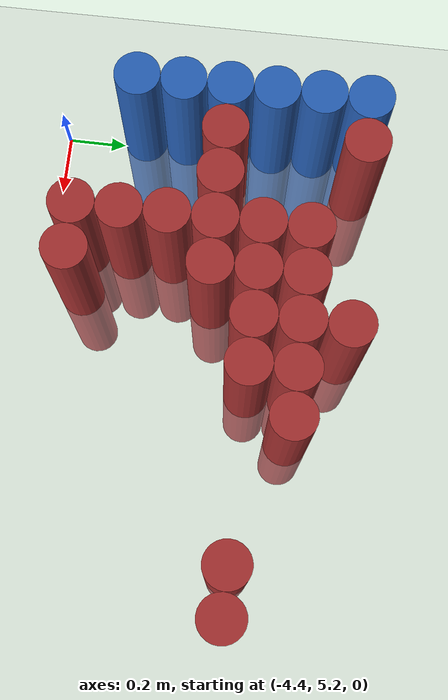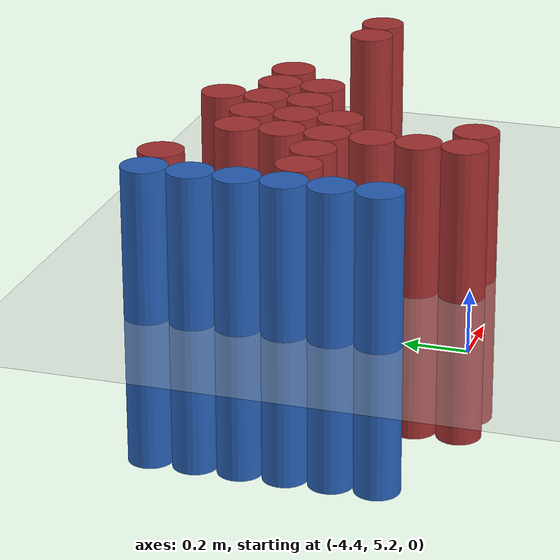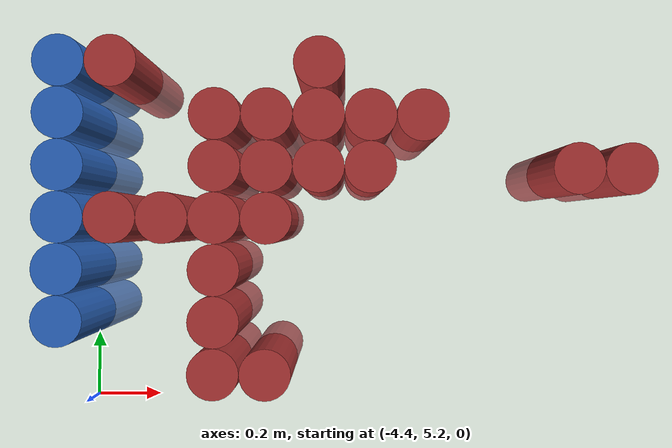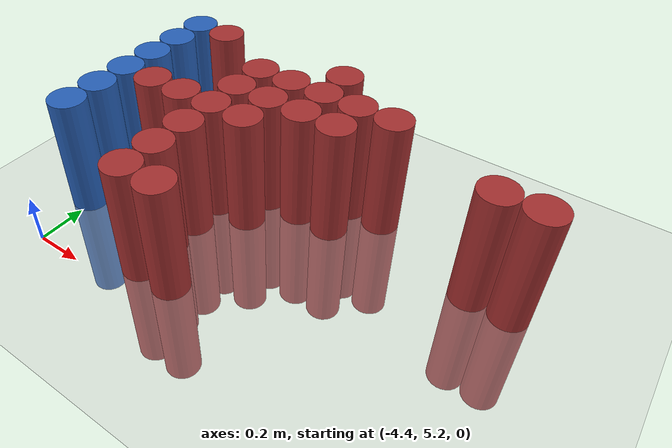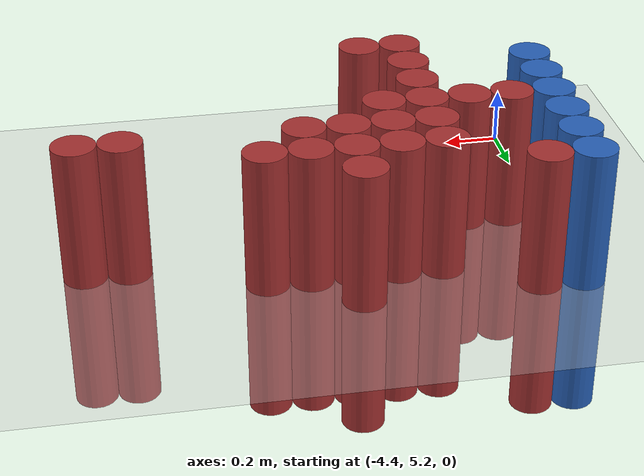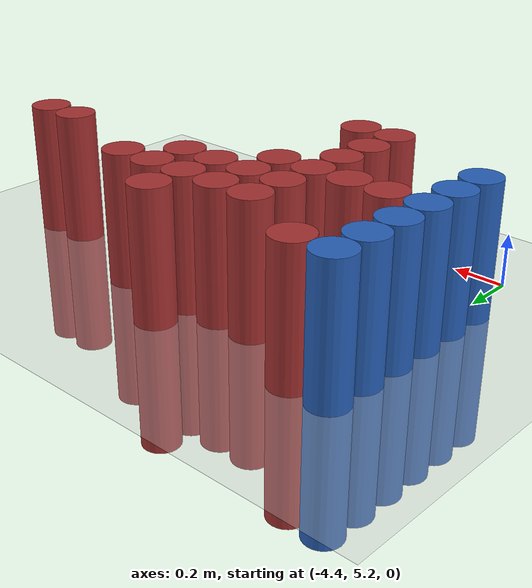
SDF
<sdf version="1.6">
 <world name="default">
  <model name="ground_plane">
   <static>1</static>
   <link name="link">
    <collision name="collision">
     <geometry><plane><normal>0 0 1</normal><size>100 100</size></plane></geometry>
     <surface><friction><ode><mu>100</mu><mu2>50</mu2></ode></friction></surface>
    </collision>
    <visual name="visual">
     <cast_shadows>0</cast_shadows>
     <geometry><plane><normal>0 0 1</normal><size>100 100</size></plane></geometry>
     <material>
      <script><uri>file://media/materials/scripts/gazebo.material</uri><name>Gazebo/Grey</name></script>
     </material>
    </visual>
   </link>
  </model>
  <model name="unit_cylinder_98">
   <static>1</static>
   <pose>-4.425000 5.475000 0.000000 0.000000 0.000000 0.000000</pose>
   <link name="link">
    <inertial>
     <mass>1</mass>
     <inertia><ixx>0.145833</ixx><ixy>0</ixy><ixz>0</ixz><iyy>0.145833</iyy><iyz>0</iyz><izz>0.125</izz></inertia>
    </inertial>
    <collision name="collision">
     <geometry><cylinder><radius>0.075000</radius><length>1</length></cylinder></geometry>
    </collision>
    <visual name="visual">
     <geometry><cylinder><radius>0.075000</radius><length>1</length></cylinder></geometry>
     <material>
      <ambient>0.152000 0.379000 0.720000 1</ambient>
      <diffuse>0.152000 0.379000 0.720000 1</diffuse>
     </material>
     <material>
      <script><name>Gazebo/Grey</name><uri>file://media/materials/scripts/gazebo.material</uri></script>
     </material>
    </visual>
   </link>
  </model>
  <model name="unit_cylinder_99">
   <static>1</static>
   <pose>-4.425000 5.625000 0.000000 0.000000 0.000000 0.000000</pose>
   <link name="link">
    <inertial>
     <mass>1</mass>
     <inertia><ixx>0.145833</ixx><ixy>0</ixy><ixz>0</ixz><iyy>0.145833</iyy><iyz>0</iyz><izz>0.125</izz></inertia>
    </inertial>
    <collision name="collision">
     <geometry><cylinder><radius>0.075000</radius><length>1</length></cylinder></geometry>
    </collision>
    <visual name="visual">
     <geometry><cylinder><radius>0.075000</radius><length>1</length></cylinder></geometry>
     <material>
      <ambient>0.152000 0.379000 0.720000 1</ambient>
      <diffuse>0.152000 0.379000 0.720000 1</diffuse>
     </material>
     <material>
      <script><name>Gazebo/Grey</name><uri>file://media/materials/scripts/gazebo.material</uri></script>
     </material>
    </visual>
   </link>
  </model>
  <model name="unit_cylinder_100">
   <static>1</static>
   <pose>-4.425000 5.775000 0.000000 0.000000 0.000000 0.000000</pose>
   <link name="link">
    <inertial>
     <mass>1</mass>
     <inertia><ixx>0.145833</ixx><ixy>0</ixy><ixz>0</ixz><iyy>0.145833</iyy><iyz>0</iyz><izz>0.125</izz></inertia>
    </inertial>
    <collision name="collision">
     <geometry><cylinder><radius>0.075000</radius><length>1</length></cylinder></geometry>
    </collision>
    <visual name="visual">
     <geometry><cylinder><radius>0.075000</radius><length>1</length></cylinder></geometry>
     <material>
      <ambient>0.152000 0.379000 0.720000 1</ambient>
      <diffuse>0.152000 0.379000 0.720000 1</diffuse>
     </material>
     <material>
      <script><name>Gazebo/Grey</name><uri>file://media/materials/scripts/gazebo.material</uri></script>
     </material>
    </visual>
   </link>
  </model>
  <model name="unit_cylinder_101">
   <static>1</static>
   <pose>-4.425000 5.925000 0.000000 0.000000 0.000000 0.000000</pose>
   <link name="link">
    <inertial>
     <mass>1</mass>
     <inertia><ixx>0.145833</ixx><ixy>0</ixy><ixz>0</ixz><iyy>0.145833</iyy><iyz>0</iyz><izz>0.125</izz></inertia>
    </inertial>
    <collision name="collision">
     <geometry><cylinder><radius>0.075000</radius><length>1</length></cylinder></geometry>
    </collision>
    <visual name="visual">
     <geometry><cylinder><radius>0.075000</radius><length>1</length></cylinder></geometry>
     <material>
      <ambient>0.152000 0.379000 0.720000 1</ambient>
      <diffuse>0.152000 0.379000 0.720000 1</diffuse>
     </material>
     <material>
      <script><name>Gazebo/Grey</name><uri>file://media/materials/scripts/gazebo.material</uri></script>
     </material>
    </visual>
   </link>
  </model>
  <model name="unit_cylinder_102">
   <static>1</static>
   <pose>-4.425000 6.075000 0.000000 0.000000 0.000000 0.000000</pose>
   <link name="link">
    <inertial>
     <mass>1</mass>
     <inertia><ixx>0.145833</ixx><ixy>0</ixy><ixz>0</ixz><iyy>0.145833</iyy><iyz>0</iyz><izz>0.125</izz></inertia>
    </inertial>
    <collision name="collision">
     <geometry><cylinder><radius>0.075000</radius><length>1</length></cylinder></geometry>
    </collision>
    <visual name="visual">
     <geometry><cylinder><radius>0.075000</radius><length>1</length></cylinder></geometry>
     <material>
      <ambient>0.152000 0.379000 0.720000 1</ambient>
      <diffuse>0.152000 0.379000 0.720000 1</diffuse>
     </material>
     <material>
      <script><name>Gazebo/Grey</name><uri>file://media/materials/scripts/gazebo.material</uri></script>
     </material>
    </visual>
   </link>
  </model>
  <model name="unit_cylinder_103">
   <static>1</static>
   <pose>-4.425000 6.225000 0.000000 0.000000 0.000000 0.000000</pose>
   <link name="link">
    <inertial>
     <mass>1</mass>
     <inertia><ixx>0.145833</ixx><ixy>0</ixy><ixz>0</ixz><iyy>0.145833</iyy><iyz>0</iyz><izz>0.125</izz></inertia>
    </inertial>
    <collision name="collision">
     <geometry><cylinder><radius>0.075000</radius><length>1</length></cylinder></geometry>
    </collision>
    <visual name="visual">
     <geometry><cylinder><radius>0.075000</radius><length>1</length></cylinder></geometry>
     <material>
      <ambient>0.152000 0.379000 0.720000 1</ambient>
      <diffuse>0.152000 0.379000 0.720000 1</diffuse>
     </material>
     <material>
      <script><name>Gazebo/Grey</name><uri>file://media/materials/scripts/gazebo.material</uri></script>
     </material>
    </visual>
   </link>
  </model>
  <model name="unit_cylinder_127">
   <static>1</static>
   <pose>-4.275000 5.775000 0.000000 0.000000 0.000000 0.000000</pose>
   <link name="link">
    <inertial>
     <mass>1</mass>
     <inertia><ixx>0.145833</ixx><ixy>0</ixy><ixz>0</ixz><iyy>0.145833</iyy><iyz>0</iyz><izz>0.125</izz></inertia>
    </inertial>
    <collision name="collision">
     <geometry><cylinder><radius>0.075000</radius><length>1</length></cylinder></geometry>
    </collision>
    <visual name="visual">
     <geometry><cylinder><radius>0.075000</radius><length>1</length></cylinder></geometry>
     <material>
      <ambient>0.648000 0.192000 0.192000 1</ambient>
      <diffuse>0.648000 0.192000 0.192000 1</diffuse>
     </material>
     <material>
      <script><name>Gazebo/Grey</name><uri>file://media/materials/scripts/gazebo.material</uri></script>
     </material>
    </visual>
   </link>
  </model>
  <model name="unit_cylinder_128">
   <static>1</static>
   <pose>-4.275000 6.225000 0.000000 0.000000 0.000000 0.000000</pose>
   <link name="link">
    <inertial>
     <mass>1</mass>
     <inertia><ixx>0.145833</ixx><ixy>0</ixy><ixz>0</ixz><iyy>0.145833</iyy><iyz>0</iyz><izz>0.125</izz></inertia>
    </inertial>
    <collision name="collision">
     <geometry><cylinder><radius>0.075000</radius><length>1</length></cylinder></geometry>
    </collision>
    <visual name="visual">
     <geometry><cylinder><radius>0.075000</radius><length>1</length></cylinder></geometry>
     <material>
      <ambient>0.648000 0.192000 0.192000 1</ambient>
      <diffuse>0.648000 0.192000 0.192000 1</diffuse>
     </material>
     <material>
      <script><name>Gazebo/Grey</name><uri>file://media/materials/scripts/gazebo.material</uri></script>
     </material>
    </visual>
   </link>
  </model>
  <model name="unit_cylinder_140">
   <static>1</static>
   <pose>-4.125000 5.775000 0.000000 0.000000 0.000000 0.000000</pose>
   <link name="link">
    <inertial>
     <mass>1</mass>
     <inertia><ixx>0.145833</ixx><ixy>0</ixy><ixz>0</ixz><iyy>0.145833</iyy><iyz>0</iyz><izz>0.125</izz></inertia>
    </inertial>
    <collision name="collision">
     <geometry><cylinder><radius>0.075000</radius><length>1</length></cylinder></geometry>
    </collision>
    <visual name="visual">
     <geometry><cylinder><radius>0.075000</radius><length>1</length></cylinder></geometry>
     <material>
      <ambient>0.648000 0.192000 0.192000 1</ambient>
      <diffuse>0.648000 0.192000 0.192000 1</diffuse>
     </material>
     <material>
      <script><name>Gazebo/Grey</name><uri>file://media/materials/scripts/gazebo.material</uri></script>
     </material>
    </visual>
   </link>
  </model>
  <model name="unit_cylinder_150">
   <static>1</static>
   <pose>-3.975000 5.325000 0.000000 0.000000 0.000000 0.000000</pose>
   <link name="link">
    <inertial>
     <mass>1</mass>
     <inertia><ixx>0.145833</ixx><ixy>0</ixy><ixz>0</ixz><iyy>0.145833</iyy><iyz>0</iyz><izz>0.125</izz></inertia>
    </inertial>
    <collision name="collision">
     <geometry><cylinder><radius>0.075000</radius><length>1</length></cylinder></geometry>
    </collision>
    <visual name="visual">
     <geometry><cylinder><radius>0.075000</radius><length>1</length></cylinder></geometry>
     <material>
      <ambient>0.648000 0.192000 0.192000 1</ambient>
      <diffuse>0.648000 0.192000 0.192000 1</diffuse>
     </material>
     <material>
      <script><name>Gazebo/Grey</name><uri>file://media/materials/scripts/gazebo.material</uri></script>
     </material>
    </visual>
   </link>
  </model>
  <model name="unit_cylinder_151">
   <static>1</static>
   <pose>-3.975000 5.475000 0.000000 0.000000 0.000000 0.000000</pose>
   <link name="link">
    <inertial>
     <mass>1</mass>
     <inertia><ixx>0.145833</ixx><ixy>0</ixy><ixz>0</ixz><iyy>0.145833</iyy><iyz>0</iyz><izz>0.125</izz></inertia>
    </inertial>
    <collision name="collision">
     <geometry><cylinder><radius>0.075000</radius><length>1</length></cylinder></geometry>
    </collision>
    <visual name="visual">
     <geometry><cylinder><radius>0.075000</radius><length>1</length></cylinder></geometry>
     <material>
      <ambient>0.648000 0.192000 0.192000 1</ambient>
      <diffuse>0.648000 0.192000 0.192000 1</diffuse>
     </material>
     <material>
      <script><name>Gazebo/Grey</name><uri>file://media/materials/scripts/gazebo.material</uri></script>
     </material>
    </visual>
   </link>
  </model>
  <model name="unit_cylinder_152">
   <static>1</static>
   <pose>-3.975000 5.625000 0.000000 0.000000 0.000000 0.000000</pose>
   <link name="link">
    <inertial>
     <mass>1</mass>
     <inertia><ixx>0.145833</ixx><ixy>0</ixy><ixz>0</ixz><iyy>0.145833</iyy><iyz>0</iyz><izz>0.125</izz></inertia>
    </inertial>
    <collision name="collision">
     <geometry><cylinder><radius>0.075000</radius><length>1</length></cylinder></geometry>
    </collision>
    <visual name="visual">
     <geometry><cylinder><radius>0.075000</radius><length>1</length></cylinder></geometry>
     <material>
      <ambient>0.648000 0.192000 0.192000 1</ambient>
      <diffuse>0.648000 0.192000 0.192000 1</diffuse>
     </material>
     <material>
      <script><name>Gazebo/Grey</name><uri>file://media/materials/scripts/gazebo.material</uri></script>
     </material>
    </visual>
   </link>
  </model>
  <model name="unit_cylinder_153">
   <static>1</static>
   <pose>-3.975000 5.775000 0.000000 0.000000 0.000000 0.000000</pose>
   <link name="link">
    <inertial>
     <mass>1</mass>
     <inertia><ixx>0.145833</ixx><ixy>0</ixy><ixz>0</ixz><iyy>0.145833</iyy><iyz>0</iyz><izz>0.125</izz></inertia>
    </inertial>
    <collision name="collision">
     <geometry><cylinder><radius>0.075000</radius><length>1</length></cylinder></geometry>
    </collision>
    <visual name="visual">
     <geometry><cylinder><radius>0.075000</radius><length>1</length></cylinder></geometry>
     <material>
      <ambient>0.648000 0.192000 0.192000 1</ambient>
      <diffuse>0.648000 0.192000 0.192000 1</diffuse>
     </material>
     <material>
      <script><name>Gazebo/Grey</name><uri>file://media/materials/scripts/gazebo.material</uri></script>
     </material>
    </visual>
   </link>
  </model>
  <model name="unit_cylinder_154">
   <static>1</static>
   <pose>-3.975000 5.925000 0.000000 0.000000 0.000000 0.000000</pose>
   <link name="link">
    <inertial>
     <mass>1</mass>
     <inertia><ixx>0.145833</ixx><ixy>0</ixy><ixz>0</ixz><iyy>0.145833</iyy><iyz>0</iyz><izz>0.125</izz></inertia>
    </inertial>
    <collision name="collision">
     <geometry><cylinder><radius>0.075000</radius><length>1</length></cylinder></geometry>
    </collision>
    <visual name="visual">
     <geometry><cylinder><radius>0.075000</radius><length>1</length></cylinder></geometry>
     <material>
      <ambient>0.648000 0.192000 0.192000 1</ambient>
      <diffuse>0.648000 0.192000 0.192000 1</diffuse>
     </material>
     <material>
      <script><name>Gazebo/Grey</name><uri>file://media/materials/scripts/gazebo.material</uri></script>
     </material>
    </visual>
   </link>
  </model>
  <model name="unit_cylinder_155">
   <static>1</static>
   <pose>-3.975000 6.075000 0.000000 0.000000 0.000000 0.000000</pose>
   <link name="link">
    <inertial>
     <mass>1</mass>
     <inertia><ixx>0.145833</ixx><ixy>0</ixy><ixz>0</ixz><iyy>0.145833</iyy><iyz>0</iyz><izz>0.125</izz></inertia>
    </inertial>
    <collision name="collision">
     <geometry><cylinder><radius>0.075000</radius><length>1</length></cylinder></geometry>
    </collision>
    <visual name="visual">
     <geometry><cylinder><radius>0.075000</radius><length>1</length></cylinder></geometry>
     <material>
      <ambient>0.648000 0.192000 0.192000 1</ambient>
      <diffuse>0.648000 0.192000 0.192000 1</diffuse>
     </material>
     <material>
      <script><name>Gazebo/Grey</name><uri>file://media/materials/scripts/gazebo.material</uri></script>
     </material>
    </visual>
   </link>
  </model>
  <model name="unit_cylinder_161">
   <static>1</static>
   <pose>-3.825000 5.325000 0.000000 0.000000 0.000000 0.000000</pose>
   <link name="link">
    <inertial>
     <mass>1</mass>
     <inertia><ixx>0.145833</ixx><ixy>0</ixy><ixz>0</ixz><iyy>0.145833</iyy><iyz>0</iyz><izz>0.125</izz></inertia>
    </inertial>
    <collision name="collision">
     <geometry><cylinder><radius>0.075000</radius><length>1</length></cylinder></geometry>
    </collision>
    <visual name="visual">
     <geometry><cylinder><radius>0.075000</radius><length>1</length></cylinder></geometry>
     <material>
      <ambient>0.648000 0.192000 0.192000 1</ambient>
      <diffuse>0.648000 0.192000 0.192000 1</diffuse>
     </material>
     <material>
      <script><name>Gazebo/Grey</name><uri>file://media/materials/scripts/gazebo.material</uri></script>
     </material>
    </visual>
   </link>
  </model>
  <model name="unit_cylinder_162">
   <static>1</static>
   <pose>-3.825000 5.775000 0.000000 0.000000 0.000000 0.000000</pose>
   <link name="link">
    <inertial>
     <mass>1</mass>
     <inertia><ixx>0.145833</ixx><ixy>0</ixy><ixz>0</ixz><iyy>0.145833</iyy><iyz>0</iyz><izz>0.125</izz></inertia>
    </inertial>
    <collision name="collision">
     <geometry><cylinder><radius>0.075000</radius><length>1</length></cylinder></geometry>
    </collision>
    <visual name="visual">
     <geometry><cylinder><radius>0.075000</radius><length>1</length></cylinder></geometry>
     <material>
      <ambient>0.648000 0.192000 0.192000 1</ambient>
      <diffuse>0.648000 0.192000 0.192000 1</diffuse>
     </material>
     <material>
      <script><name>Gazebo/Grey</name><uri>file://media/materials/scripts/gazebo.material</uri></script>
     </material>
    </visual>
   </link>
  </model>
  <model name="unit_cylinder_163">
   <static>1</static>
   <pose>-3.825000 5.925000 0.000000 0.000000 0.000000 0.000000</pose>
   <link name="link">
    <inertial>
     <mass>1</mass>
     <inertia><ixx>0.145833</ixx><ixy>0</ixy><ixz>0</ixz><iyy>0.145833</iyy><iyz>0</iyz><izz>0.125</izz></inertia>
    </inertial>
    <collision name="collision">
     <geometry><cylinder><radius>0.075000</radius><length>1</length></cylinder></geometry>
    </collision>
    <visual name="visual">
     <geometry><cylinder><radius>0.075000</radius><length>1</length></cylinder></geometry>
     <material>
      <ambient>0.648000 0.192000 0.192000 1</ambient>
      <diffuse>0.648000 0.192000 0.192000 1</diffuse>
     </material>
     <material>
      <script><name>Gazebo/Grey</name><uri>file://media/materials/scripts/gazebo.material</uri></script>
     </material>
    </visual>
   </link>
  </model>
  <model name="unit_cylinder_164">
   <static>1</static>
   <pose>-3.825000 6.075000 0.000000 0.000000 0.000000 0.000000</pose>
   <link name="link">
    <inertial>
     <mass>1</mass>
     <inertia><ixx>0.145833</ixx><ixy>0</ixy><ixz>0</ixz><iyy>0.145833</iyy><iyz>0</iyz><izz>0.125</izz></inertia>
    </inertial>
    <collision name="collision">
     <geometry><cylinder><radius>0.075000</radius><length>1</length></cylinder></geometry>
    </collision>
    <visual name="visual">
     <geometry><cylinder><radius>0.075000</radius><length>1</length></cylinder></geometry>
     <material>
      <ambient>0.648000 0.192000 0.192000 1</ambient>
      <diffuse>0.648000 0.192000 0.192000 1</diffuse>
     </material>
     <material>
      <script><name>Gazebo/Grey</name><uri>file://media/materials/scripts/gazebo.material</uri></script>
     </material>
    </visual>
   </link>
  </model>
  <model name="unit_cylinder_172">
   <static>1</static>
   <pose>-3.675000 5.925000 0.000000 0.000000 0.000000 0.000000</pose>
   <link name="link">
    <inertial>
     <mass>1</mass>
     <inertia><ixx>0.145833</ixx><ixy>0</ixy><ixz>0</ixz><iyy>0.145833</iyy><iyz>0</iyz><izz>0.125</izz></inertia>
    </inertial>
    <collision name="collision">
     <geometry><cylinder><radius>0.075000</radius><length>1</length></cylinder></geometry>
    </collision>
    <visual name="visual">
     <geometry><cylinder><radius>0.075000</radius><length>1</length></cylinder></geometry>
     <material>
      <ambient>0.648000 0.192000 0.192000 1</ambient>
      <diffuse>0.648000 0.192000 0.192000 1</diffuse>
     </material>
     <material>
      <script><name>Gazebo/Grey</name><uri>file://media/materials/scripts/gazebo.material</uri></script>
     </material>
    </visual>
   </link>
  </model>
  <model name="unit_cylinder_173">
   <static>1</static>
   <pose>-3.675000 6.075000 0.000000 0.000000 0.000000 0.000000</pose>
   <link name="link">
    <inertial>
     <mass>1</mass>
     <inertia><ixx>0.145833</ixx><ixy>0</ixy><ixz>0</ixz><iyy>0.145833</iyy><iyz>0</iyz><izz>0.125</izz></inertia>
    </inertial>
    <collision name="collision">
     <geometry><cylinder><radius>0.075000</radius><length>1</length></cylinder></geometry>
    </collision>
    <visual name="visual">
     <geometry><cylinder><radius>0.075000</radius><length>1</length></cylinder></geometry>
     <material>
      <ambient>0.648000 0.192000 0.192000 1</ambient>
      <diffuse>0.648000 0.192000 0.192000 1</diffuse>
     </material>
     <material>
      <script><name>Gazebo/Grey</name><uri>file://media/materials/scripts/gazebo.material</uri></script>
     </material>
    </visual>
   </link>
  </model>
  <model name="unit_cylinder_174">
   <static>1</static>
   <pose>-3.675000 6.225000 0.000000 0.000000 0.000000 0.000000</pose>
   <link name="link">
    <inertial>
     <mass>1</mass>
     <inertia><ixx>0.145833</ixx><ixy>0</ixy><ixz>0</ixz><iyy>0.145833</iyy><iyz>0</iyz><izz>0.125</izz></inertia>
    </inertial>
    <collision name="collision">
     <geometry><cylinder><radius>0.075000</radius><length>1</length></cylinder></geometry>
    </collision>
    <visual name="visual">
     <geometry><cylinder><radius>0.075000</radius><length>1</length></cylinder></geometry>
     <material>
      <ambient>0.648000 0.192000 0.192000 1</ambient>
      <diffuse>0.648000 0.192000 0.192000 1</diffuse>
     </material>
     <material>
      <script><name>Gazebo/Grey</name><uri>file://media/materials/scripts/gazebo.material</uri></script>
     </material>
    </visual>
   </link>
  </model>
  <model name="unit_cylinder_179">
   <static>1</static>
   <pose>-3.525000 5.925000 0.000000 0.000000 0.000000 0.000000</pose>
   <link name="link">
    <inertial>
     <mass>1</mass>
     <inertia><ixx>0.145833</ixx><ixy>0</ixy><ixz>0</ixz><iyy>0.145833</iyy><iyz>0</iyz><izz>0.125</izz></inertia>
    </inertial>
    <collision name="collision">
     <geometry><cylinder><radius>0.075000</radius><length>1</length></cylinder></geometry>
    </collision>
    <visual name="visual">
     <geometry><cylinder><radius>0.075000</radius><length>1</length></cylinder></geometry>
     <material>
      <ambient>0.648000 0.192000 0.192000 1</ambient>
      <diffuse>0.648000 0.192000 0.192000 1</diffuse>
     </material>
     <material>
      <script><name>Gazebo/Grey</name><uri>file://media/materials/scripts/gazebo.material</uri></script>
     </material>
    </visual>
   </link>
  </model>
  <model name="unit_cylinder_180">
   <static>1</static>
   <pose>-3.525000 6.075000 0.000000 0.000000 0.000000 0.000000</pose>
   <link name="link">
    <inertial>
     <mass>1</mass>
     <inertia><ixx>0.145833</ixx><ixy>0</ixy><ixz>0</ixz><iyy>0.145833</iyy><iyz>0</iyz><izz>0.125</izz></inertia>
    </inertial>
    <collision name="collision">
     <geometry><cylinder><radius>0.075000</radius><length>1</length></cylinder></geometry>
    </collision>
    <visual name="visual">
     <geometry><cylinder><radius>0.075000</radius><length>1</length></cylinder></geometry>
     <material>
      <ambient>0.648000 0.192000 0.192000 1</ambient>
      <diffuse>0.648000 0.192000 0.192000 1</diffuse>
     </material>
     <material>
      <script><name>Gazebo/Grey</name><uri>file://media/materials/scripts/gazebo.material</uri></script>
     </material>
    </visual>
   </link>
  </model>
  <model name="unit_cylinder_187">
   <static>1</static>
   <pose>-3.375000 6.075000 0.000000 0.000000 0.000000 0.000000</pose>
   <link name="link">
    <inertial>
     <mass>1</mass>
     <inertia><ixx>0.145833</ixx><ixy>0</ixy><ixz>0</ixz><iyy>0.145833</iyy><iyz>0</iyz><izz>0.125</izz></inertia>
    </inertial>
    <collision name="collision">
     <geometry><cylinder><radius>0.075000</radius><length>1</length></cylinder></geometry>
    </collision>
    <visual name="visual">
     <geometry><cylinder><radius>0.075000</radius><length>1</length></cylinder></geometry>
     <material>
      <ambient>0.648000 0.192000 0.192000 1</ambient>
      <diffuse>0.648000 0.192000 0.192000 1</diffuse>
     </material>
     <material>
      <script><name>Gazebo/Grey</name><uri>file://media/materials/scripts/gazebo.material</uri></script>
     </material>
    </visual>
   </link>
  </model>
  <model name="unit_cylinder_197">
   <static>1</static>
   <pose>-2.925000 5.925000 0.000000 0.000000 0.000000 0.000000</pose>
   <link name="link">
    <inertial>
     <mass>1</mass>
     <inertia><ixx>0.145833</ixx><ixy>0</ixy><ixz>0</ixz><iyy>0.145833</iyy><iyz>0</iyz><izz>0.125</izz></inertia>
    </inertial>
    <collision name="collision">
     <geometry><cylinder><radius>0.075000</radius><length>1</length></cylinder></geometry>
    </collision>
    <visual name="visual">
     <geometry><cylinder><radius>0.075000</radius><length>1</length></cylinder></geometry>
     <material>
      <ambient>0.648000 0.192000 0.192000 1</ambient>
      <diffuse>0.648000 0.192000 0.192000 1</diffuse>
     </material>
     <material>
      <script><name>Gazebo/Grey</name><uri>file://media/materials/scripts/gazebo.material</uri></script>
     </material>
    </visual>
   </link>
  </model>
  <model name="unit_cylinder_198">
   <static>1</static>
   <pose>-2.775000 5.925000 0.000000 0.000000 0.000000 0.000000</pose>
   <link name="link">
    <inertial>
     <mass>1</mass>
     <inertia><ixx>0.145833</ixx><ixy>0</ixy><ixz>0</ixz><iyy>0.145833</iyy><iyz>0</iyz><izz>0.125</izz></inertia>
    </inertial>
    <collision name="collision">
     <geometry><cylinder><radius>0.075000</radius><length>1</length></cylinder></geometry>
    </collision>
    <visual name="visual">
     <geometry><cylinder><radius>0.075000</radius><length>1</length></cylinder></geometry>
     <material>
      <ambient>0.648000 0.192000 0.192000 1</ambient>
      <diffuse>0.648000 0.192000 0.192000 1</diffuse>
     </material>
     <material>
      <script><name>Gazebo/Grey</name><uri>file://media/materials/scripts/gazebo.material</uri></script>
     </material>
    </visual>
   </link>
  </model>
 </world>
</sdf>
